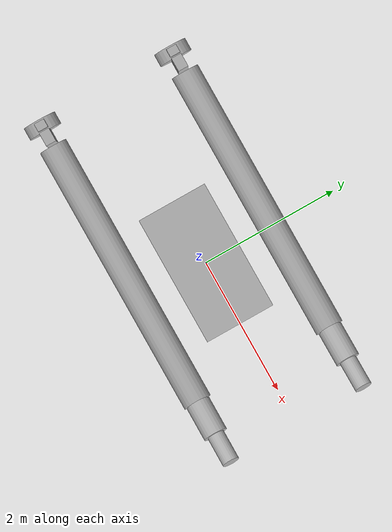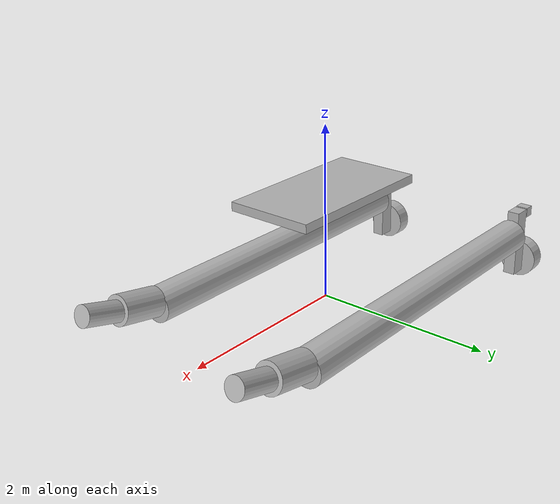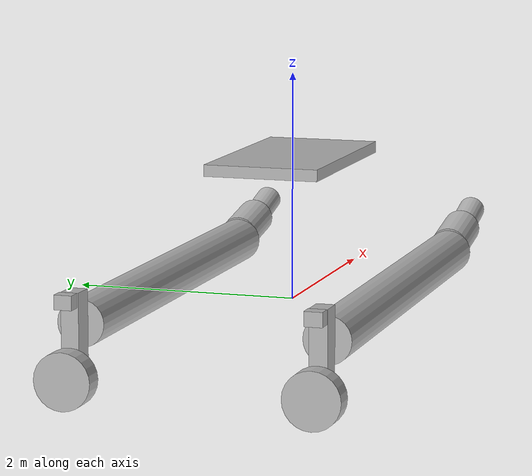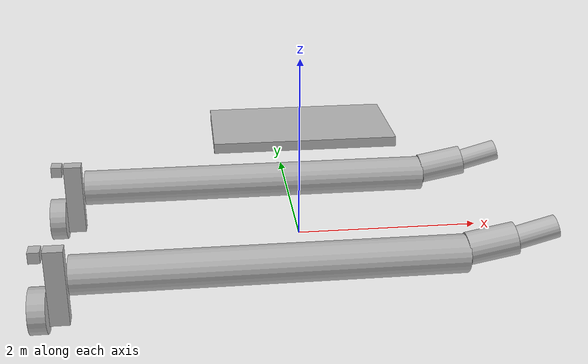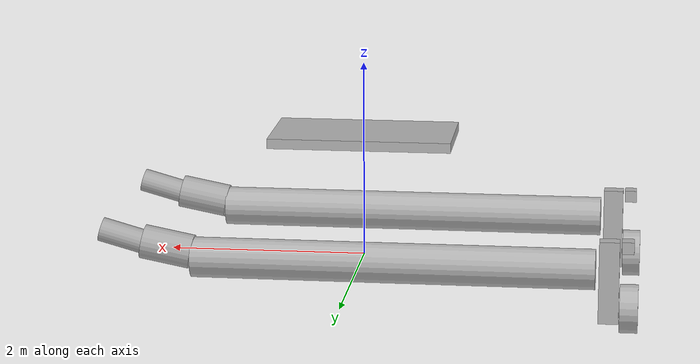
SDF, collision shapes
<?xml version="1.0"?>

<sdf version='1.6'>
<!-- Basic model of the 16' WAM-V USV -->
<model name="wamv">
  <static>false</static>
  <link name="base_link">
    <enable_wind>true</enable_wind>
    <inertial>
      <mass>180.0</mass>
      <inertia>
        <ixx>120.0</ixx>
        <ixy>0.0</ixy>
        <ixz>0.0</ixz>
        <iyy>393</iyy>
        <iyz>0.0</iyz>
        <izz>446.0</izz>
      </inertia>
    </inertial>

    <visual name="base_visual">
      <geometry>
        <mesh><uri>meshes/WAM-V-Base.dae</uri></mesh>
      </geometry>
    </visual>

    <!-- Top base -->
    <collision name="top_base">
      <pose>0 -0 1.25 0 0 0</pose>
      <geometry>
        <box><size>1.85 1 0.1</size></box>
      </geometry>
    </collision>

    <!-- left base -->
    <collision name="left_float">
      <pose>-0.4 1.03 0.2 0 1.57 0 </pose>
      <geometry>
        <cylinder><length>4</length><radius>0.2</radius></cylinder>
      </geometry>
    </collision>
    <collision name="left_mid_float">
      <pose>1.85 1.03 0.3 0 1.38 0</pose>
      <geometry>
        <cylinder><length>0.5</length><radius>0.17</radius></cylinder>
      </geometry>
    </collision>
    <collision name="left_front_float">
      <pose>2.3 1.03 0.4 0 1.3 0</pose>
      <geometry>
        <cylinder><length>0.45</length><radius>0.12</radius></cylinder>
      </geometry>
    </collision>

    <!-- right base -->
    <collision name="right_float">
      <pose>-0.4 -1.03 0.2 0 1.57 0 </pose>
      <geometry>
        <cylinder><length>4</length><radius>0.2</radius></cylinder>
      </geometry>
    </collision>
    <collision name="right_mid_float">
      <pose>1.85 -1.03 0.3 0 1.38 0</pose>
      <geometry>
        <cylinder><length>0.5</length><radius>0.17</radius></cylinder>
      </geometry>
    </collision>
    <collision name="right_front_float">
      <pose>2.3 -1.03 0.4 0 1.3 0</pose>
      <geometry>
        <cylinder><length>0.45</length><radius>0.12</radius></cylinder>
      </geometry>
    </collision>
  </link>

  <!-- Camera link -->
  <link name="camera_link">
      <pose>0.6 0 1.0 0 0 0</pose>
      <inertial>
        <pose>0 0 0 0 0 0</pose>
        <mass>0.1</mass>
        <inertia>
          <ixx>0.0001</ixx>
          <ixy>0</ixy>
          <ixz>0</ixz>
          <iyy>0.0001</iyy>
          <iyz>0</iyz>
          <izz>0.0001</izz>
        </inertia>
      </inertial>

    <sensor type="rgbd_camera" name="depth_camera">
      <camera>
        <horizontal_fov>1.047</horizontal_fov>
        <image>
          <width>640</width>
          <height>480</height>
        </image>
        <clip>
          <near>0.1</near>
          <far>100</far>
        </clip>
        <depth_camera>
          <output>depths</output>
          <clip>
            <near>0.1</near>
            <far>10.0</far>
          </clip>
        </depth_camera>
      </camera>
      <always_on>1</always_on>
      <update_rate>30</update_rate>
      <visualize>true</visualize>
      <topic>/depth_camera</topic>

      <plugin name="GstCameraPlugin"
        filename="GstCameraPlugin">
        <udp_host>127.0.0.1</udp_host>
        <udp_port>5600</udp_port>
        <use_basic_pipeline>true</use_basic_pipeline>
        <use_cuda>false</use_cuda>

        <image_topic>/depth_camera/image</image_topic>
        <enable_topic>/depth_camera/image/enable_streaming</enable_topic>
      </plugin>

      <plugin name="GstCameraPlugin"
        filename="GstCameraPlugin">
        <udp_host>127.0.0.1</udp_host>
        <udp_port>5610</udp_port>
        <use_basic_pipeline>true</use_basic_pipeline>
        <use_cuda>false</use_cuda>

        <image_topic>/depth_camera/depth_image</image_topic>
        <enable_topic>/depth_camera/depth_image/enable_streaming</enable_topic>
      </plugin>
    </sensor>

    </link>
    <joint name="camera_joint" type="fixed">
      <child>camera_link</child>
      <parent>base_link</parent>
    </joint>

  <!-- left engine and thruster -->
  <link name="left_engine_link">
    <pose>-2.373776 1.027135 0.318237 0 0 0</pose>
    <visual name ="left_engine_visual">
      <geometry>
        <mesh><uri>meshes/engine.dae</uri></mesh>
      </geometry>
    </visual>
    <collision name="left_engine_vertical_axis_collision">
      <pose>-0.16 0 -0.24 0 0 0</pose>
      <geometry>
        <box><size>0.2 0.15 0.83</size></box>
      </geometry>
    </collision>
    <collision name="left_engine_rear_end_collision">
      <pose>-0.34 0 0.12 0 0 0</pose>
      <geometry>
        <box><size>0.12 0.15 0.12</size></box>
      </geometry>
    </collision>
    <inertial>
      <mass>15.0</mass>
      <inertia>
        <ixx>0.889245</ixx>
        <ixy>0.0</ixy>
        <ixz>0.0</ixz>
        <iyy>0.811125</iyy>
        <iyz>0.0</iyz>
        <izz>0.078125</izz>
      </inertia>
    </inertial>
  </link>
  <link name="left_propeller_link">
    <pose>-2.651932 1.027135 -0.191134 0 0 0</pose>
    <visual name ="left_propeller_visual">
      <geometry>
        <mesh><uri>meshes/propeller.dae</uri></mesh>
      </geometry>
    </visual>
    <collision name="left_propeller_collision">
      <pose>-0.08 0 0 0 1.57 0</pose>
      <geometry>
        <cylinder><length>0.18</length><radius>0.24</radius></cylinder>
      </geometry>
    </collision>
    <inertial>
      <mass>0.5</mass>
      <inertia>
        <ixx>0.008545</ixx>
        <ixy>0.0</ixy>
        <ixz>0.0</ixz>
        <iyy>0.008545</iyy>
        <iyz>0.0</iyz>
        <izz>0.0144</izz>
      </inertia>
    </inertial>
  </link>

  <joint name="left_chasis_engine_joint" type="revolute">
    <axis>
      <xyz>0 0 1</xyz>
      <limit>
        <lower>-1.57079</lower>
        <upper>1.57079</upper>
        <effort>10</effort>
        <velocity>10</velocity>
      </limit>
    </axis>
    <parent>base_link</parent>
    <child>left_engine_link</child>
  </joint>

  <joint name="left_engine_propeller_joint" type="revolute">
    <axis>
      <xyz>1 0 0</xyz>
      <limit>
        <effort>100</effort>
        <velocity>100</velocity>
      </limit>
      <dynamics>
        <friction>0.05</friction>
        <damping>0.05</damping>
      </dynamics>
    </axis>
    <parent>left_engine_link</parent>
    <child>left_propeller_link</child>
  </joint>

  <!-- right engine and thruster -->
  <link name="right_engine_link">
    <pose>-2.373776 -1.027135 0.318237 0 0 0</pose>
    <visual name ="right_engine_visual">
      <geometry>
        <mesh><uri>meshes/engine.dae</uri></mesh>
      </geometry>
    </visual>
    <collision name="right_engine_vertical_axis_collision">
      <pose>-0.16 0 -0.24 0 0 0</pose>
      <geometry>
        <box><size>0.2 0.15 0.83</size></box>
      </geometry>
    </collision>
    <collision name="right_engine_rear_end_collision">
      <pose>-0.34 0 0.12 0 0 0</pose>
      <geometry>
        <box><size>0.12 0.15 0.12</size></box>
      </geometry>
    </collision>
    <inertial>
      <mass>15.0</mass>
      <inertia>
        <ixx>0.889245</ixx>
        <ixy>0.0</ixy>
        <ixz>0.0</ixz>
        <iyy>0.811125</iyy>
        <iyz>0.0</iyz>
        <izz>0.078125</izz>
      </inertia>
    </inertial>
  </link>
  <link name="right_propeller_link">
    <pose>-2.651932 -1.027135 -0.191134 0 0 0</pose>
    <visual name ="right_propeller_visual">
      <geometry>
        <mesh><uri>meshes/propeller.dae</uri></mesh>
      </geometry>
    </visual>
    <collision name="right_propeller_collision">
      <pose>-0.08 0 0 0 1.57 0</pose>
      <geometry>
        <cylinder><length>0.18</length><radius>0.24</radius></cylinder>
      </geometry>
    </collision>
    <inertial>
      <mass>0.5</mass>
      <inertia>
        <ixx>0.008545</ixx>
        <ixy>0.0</ixy>
        <ixz>0.0</ixz>
        <iyy>0.008545</iyy>
        <iyz>0.0</iyz>
        <izz>0.0144</izz>
      </inertia>
    </inertial>
  </link>

  <joint name="right_chasis_engine_joint" type="revolute">
    <axis>
      <xyz>0 0 1</xyz>
      <limit>
        <lower>-1.57079</lower>
        <upper>1.57079</upper>
        <effort>10</effort>
        <velocity>10</velocity>
      </limit>
    </axis>
    <parent>base_link</parent>
    <child>right_engine_link</child>
  </joint>

  <joint name="right_engine_propeller_joint" type="revolute">
    <axis>
      <xyz>1 0 0</xyz>
      <limit>
        <effort>100</effort>
        <velocity>100</velocity>
      </limit>
      <dynamics>
        <friction>0.05</friction>
        <damping>0.05</damping>
      </dynamics>
    </axis>
    <parent>right_engine_link</parent>
    <child>right_propeller_link</child>
  </joint>

  <!-- Added IMU link and joint to be similar to blue boat SDF -->
  <link name="imu_link">
      <inertial>
        <pose>0 0 0 0 0 0</pose>
        <mass>0.1</mass>
        <inertia>
          <ixx>0.0001</ixx>
          <ixy>0</ixy>
          <ixz>0</ixz>
          <iyy>0.0001</iyy>
          <iyz>0</iyz>
          <izz>0.0001</izz>
        </inertia>
      </inertial>
      <sensor name="imu_sensor" type="imu">
        <pose degrees="true">0 0 0 180 0 0</pose>
        <always_on>1</always_on>
        <update_rate>1000.0</update_rate>
      </sensor>
    </link>
    <joint name="imu_joint" type="revolute">
      <child>imu_link</child>
      <parent>base_link</parent>
      <axis>
        <xyz>0 0 1</xyz>
        <limit>
          <lower>0</lower>
          <upper>0</upper>
        </limit>
        <dynamics>
          <damping>1.0</damping>
        </dynamics>
      </axis>
    </joint>

  <plugin
    filename="gz-sim-thruster-system"
    name="gz::sim::systems::Thruster">
    <joint_name>left_engine_propeller_joint</joint_name>
    <thrust_coefficient>0.004422</thrust_coefficient>
    <fluid_density>1000</fluid_density>
    <propeller_diameter>0.2</propeller_diameter>
    <velocity_control>false</velocity_control>
  </plugin>

  <plugin
    filename="gz-sim-joint-position-controller-system"
    name="gz::sim::systems::JointPositionController">
    <joint_name>left_chasis_engine_joint</joint_name>
    <use_velocity_commands>true</use_velocity_commands>
    <topic>/wamv/left/thruster/joint/cmd_pos</topic>
  </plugin>

   <plugin
    filename="gz-sim-thruster-system"
    name="gz::sim::systems::Thruster">
    <joint_name>right_engine_propeller_joint</joint_name>
    <thrust_coefficient>0.004422</thrust_coefficient>
    <fluid_density>1000</fluid_density>
    <propeller_diameter>0.2</propeller_diameter>
    <velocity_control>false</velocity_control>
  </plugin>

  <plugin
    filename="gz-sim-joint-position-controller-system"
    name="gz::sim::systems::JointPositionController">
    <joint_name>right_chasis_engine_joint</joint_name>
    <use_velocity_commands>true</use_velocity_commands>
    <topic>/wamv/right/thruster/joint/cmd_pos</topic>
  </plugin>

  <!-- Uncomment to produce buoyancy on the left hull -->

  <plugin
    filename="libSurface.so"
    name="maritime::Surface">
    <link_name>base_link</link_name>
    <hull_length>4.9</hull_length>
    <hull_radius>0.213</hull_radius>
    <fluid_level>0</fluid_level>
    <points>
      <point>0.6 1.03 0</point>
      <point>-1.4 1.03 0</point>
    </points>
    <wavefield>
      <topic>/gazebo/wavefield/parameters</topic>
    </wavefield>
  </plugin>

  <plugin
    filename="libSurface.so"
    name="maritime::Surface">
    <link_name>base_link</link_name>
    <hull_length>40.9</hull_length>
    <hull_radius>0.213</hull_radius>
    <fluid_level>0</fluid_level>
    <points>
      <point>0.6 -1.03 0</point>
      <point>-1.4 -1.03 0</point>
    </points>
    <wavefield>
      <topic>/gazebo/wavefield/parameters</topic>
    </wavefield>
  </plugin>

  <!-- Uncomment to enable hydrodynamics -->
  <plugin
    filename="gz-sim-hydrodynamics-system"
    name="gz::sim::systems::Hydrodynamics">
    <link_name>base_link</link_name>
    <xDotU>0.0</xDotU>
    <yDotV>0.0</yDotV>
    <nDotR>0.0</nDotR>
    <xU>-51.3</xU>
    <xAbsU>-72.4</xAbsU>
    <yV>-40.0</yV>
    <yAbsV>0.0</yAbsV>
    <zW>-500.0</zW>
    <kP>-50.0</kP>
    <mQ>-50.0</mQ>
    <nR>-400.0</nR>
    <nAbsR>0.0</nAbsR>
  </plugin>

  <!-- ardupilot plugin -->
  <plugin name="ArduPilotPlugin"
    filename="ArduPilotPlugin">
    <fdm_addr>127.0.0.1</fdm_addr>
    <fdm_port_in>9002</fdm_port_in>
    <connectionTimeoutMaxCount>5</connectionTimeoutMaxCount>
    <lock_step>1</lock_step>
    <gazeboXYZToNED degrees="true">0 0 0 180 0 90</gazeboXYZToNED>
    <modelXYZToAirplaneXForwardZDown degrees="true">0 0 0 180 0 0</modelXYZToAirplaneXForwardZDown>
    <imuName>imu_link::imu_sensor</imuName>

    <!--
      port motor cw

      SERVO1_FUNCTION 73 (ThrottleLeft)
      SERVO1_MAX 2000
      SERVO1_MIN 1000
    -->
    <control channel="0">
      <jointName>left_engine_propeller_joint</jointName>
      <multiplier>70</multiplier>
      <offset>-0.5</offset>
      <servo_min>1000</servo_min>
      <servo_max>2000</servo_max>
      <type>COMMAND</type>
      <cmd_topic>/model/wam-V/joint/left_engine_propeller_joint/cmd_thrust</cmd_topic>
    </control>

    <!--
      stbd motor ccw

      SERVO3_FUNCTION 74 (ThrottleRight)
      SERVO3_MAX 2000
      SERVO3_MIN 1000
    -->
    <control channel="2">
      <jointName>right_engine_propeller_joint</jointName>
      <multiplier>70</multiplier>
      <offset>-0.5</offset>
      <servo_min>1000</servo_min>
      <servo_max>2000</servo_max>
      <type>COMMAND</type>
      <cmd_topic>/model/wam-V/joint/right_engine_propeller_joint/cmd_thrust</cmd_topic>
    </control>
  </plugin>

  <link name="world_anchor">
    <inertial>
      <mass>0.001</mass>
      <inertia>
        <ixx>1e-6</ixx>
        <iyy>1e-6</iyy>
        <izz>1e-6</izz>
      </inertia>
    </inertial>
  </link>

</model>

</sdf>
